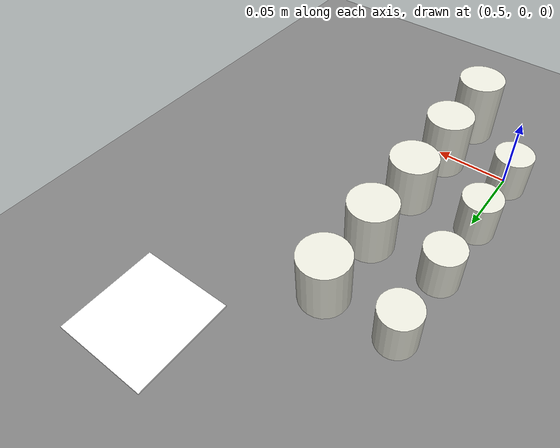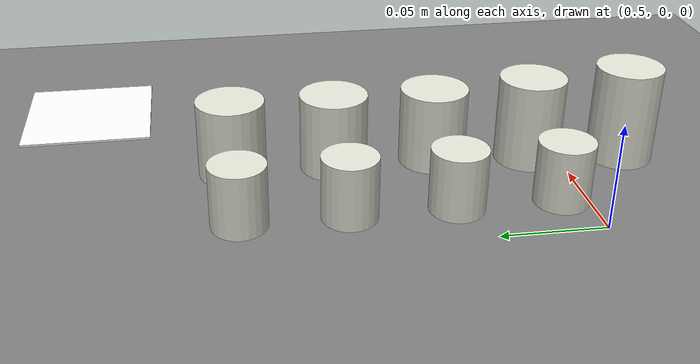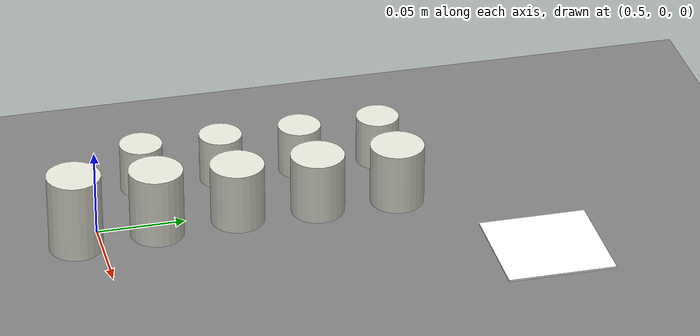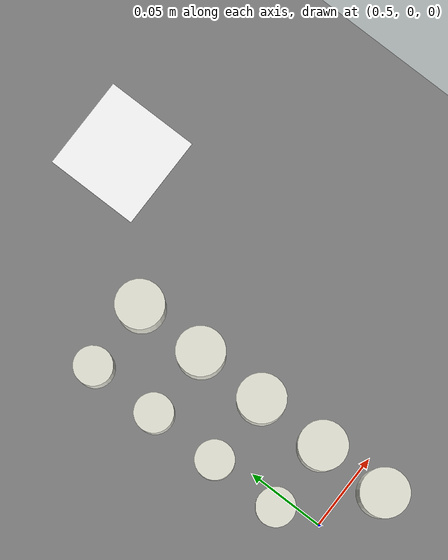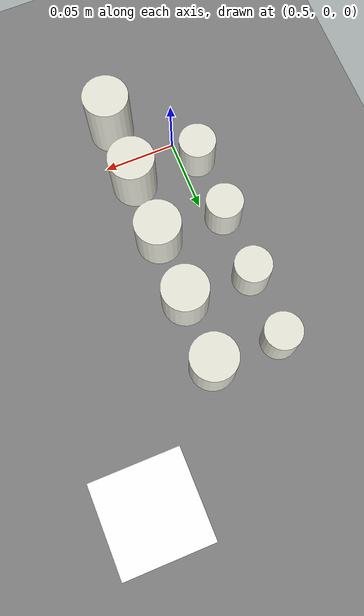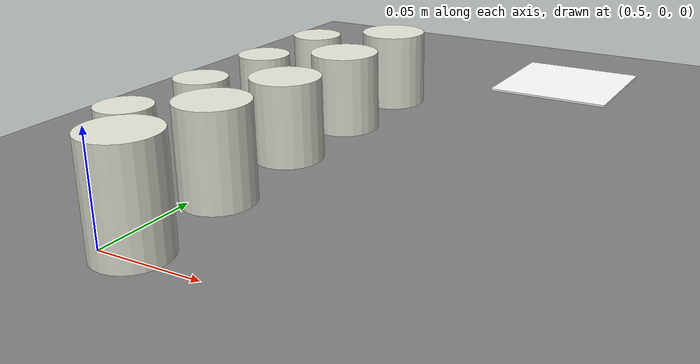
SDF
<sdf version="1.8">
 <world name="arm_world">
  <model name="ground_plane">
   <static>true</static>
   <link name="link">
    <collision name="collision">
     <geometry><plane><normal>0 0 1</normal><size>20 20</size></plane></geometry>
    </collision>
    <visual name="visual">
     <geometry><plane><normal>0 0 1</normal><size>20 20</size></plane></geometry>
     <material><ambient>0.3 0.3 0.3 1</ambient><diffuse>0.5 0.5 0.5 1</diffuse></material>
    </visual>
   </link>
  </model>
  <model name="wp_ra1">
   <pose>0.5375  0.1625 0.038 0 0 0</pose>
   <link name="l">
    <inertial>
     <mass>0.02</mass>
     <inertia>
      <ixx>0.000001</ixx>
      <iyy>0.000001</iyy>
      <izz>0.000001</izz>
      <ixy>0</ixy>
      <ixz>0</ixz>
      <iyz>0</iyz>
     </inertia>
    </inertial>
    <collision name="c">
     <geometry><cylinder><radius>0.015</radius><length>0.035</length></cylinder></geometry>
    </collision>
    <visual name="v">
     <geometry><cylinder><radius>0.015</radius><length>0.035</length></cylinder></geometry>
     <material><ambient>0.9 0.9 0.85 1</ambient><diffuse>0.9 0.9 0.85 1</diffuse></material>
    </visual>
   </link>
  </model>
  <model name="wp_nb1">
   <pose>0.5375  0.1175 0.038 0 0 0</pose>
   <link name="l">
    <inertial>
     <mass>0.02</mass>
     <inertia>
      <ixx>0.000001</ixx>
      <iyy>0.000001</iyy>
      <izz>0.000001</izz>
      <ixy>0</ixy>
      <ixz>0</ixz>
      <iyz>0</iyz>
     </inertia>
    </inertial>
    <collision name="c">
     <geometry><cylinder><radius>0.015</radius><length>0.035</length></cylinder></geometry>
    </collision>
    <visual name="v">
     <geometry><cylinder><radius>0.015</radius><length>0.035</length></cylinder></geometry>
     <material><ambient>0.9 0.9 0.85 1</ambient><diffuse>0.9 0.9 0.85 1</diffuse></material>
    </visual>
   </link>
  </model>
  <model name="wp_bc1">
   <pose>0.5375  0.0725 0.038 0 0 0</pose>
   <link name="l">
    <inertial>
     <mass>0.02</mass>
     <inertia>
      <ixx>0.000001</ixx>
      <iyy>0.000001</iyy>
      <izz>0.000001</izz>
      <ixy>0</ixy>
      <ixz>0</ixz>
      <iyz>0</iyz>
     </inertia>
    </inertial>
    <collision name="c">
     <geometry><cylinder><radius>0.015</radius><length>0.035</length></cylinder></geometry>
    </collision>
    <visual name="v">
     <geometry><cylinder><radius>0.015</radius><length>0.035</length></cylinder></geometry>
     <material><ambient>0.9 0.9 0.85 1</ambient><diffuse>0.9 0.9 0.85 1</diffuse></material>
    </visual>
   </link>
  </model>
  <model name="wp_qd1">
   <pose>0.5375  0.0275 0.038 0 0 0</pose>
   <link name="l">
    <inertial>
     <mass>0.02</mass>
     <inertia>
      <ixx>0.000001</ixx>
      <iyy>0.000001</iyy>
      <izz>0.000001</izz>
      <ixy>0</ixy>
      <ixz>0</ixz>
      <iyz>0</iyz>
     </inertia>
    </inertial>
    <collision name="c">
     <geometry><cylinder><radius>0.015</radius><length>0.040</length></cylinder></geometry>
    </collision>
    <visual name="v">
     <geometry><cylinder><radius>0.015</radius><length>0.040</length></cylinder></geometry>
     <material><ambient>0.9 0.9 0.85 1</ambient><diffuse>0.9 0.9 0.85 1</diffuse></material>
    </visual>
   </link>
  </model>
  <model name="wp_ke1">
   <pose>0.5375 -0.0175 0.038 0 0 0</pose>
   <link name="l">
    <inertial>
     <mass>0.02</mass>
     <inertia>
      <ixx>0.000001</ixx>
      <iyy>0.000001</iyy>
      <izz>0.000001</izz>
      <ixy>0</ixy>
      <ixz>0</ixz>
      <iyz>0</iyz>
     </inertia>
    </inertial>
    <collision name="c">
     <geometry><cylinder><radius>0.015</radius><length>0.045</length></cylinder></geometry>
    </collision>
    <visual name="v">
     <geometry><cylinder><radius>0.015</radius><length>0.045</length></cylinder></geometry>
     <material><ambient>0.9 0.9 0.85 1</ambient><diffuse>0.9 0.9 0.85 1</diffuse></material>
    </visual>
   </link>
  </model>
  <model name="wp_pa2">
   <pose>0.4925  0.1625 0.035 0 0 0</pose>
   <link name="l">
    <inertial>
     <mass>0.015</mass>
     <inertia>
      <ixx>0.000001</ixx>
      <iyy>0.000001</iyy>
      <izz>0.000001</izz>
      <ixy>0</ixy>
      <ixz>0</ixz>
      <iyz>0</iyz>
     </inertia>
    </inertial>
    <collision name="c">
     <geometry><cylinder><radius>0.012</radius><length>0.028</length></cylinder></geometry>
    </collision>
    <visual name="v">
     <geometry><cylinder><radius>0.012</radius><length>0.028</length></cylinder></geometry>
     <material><ambient>0.9 0.9 0.85 1</ambient><diffuse>0.9 0.9 0.85 1</diffuse></material>
    </visual>
   </link>
  </model>
  <model name="wp_pb2">
   <pose>0.4925  0.1175 0.035 0 0 0</pose>
   <link name="l">
    <inertial>
     <mass>0.015</mass>
     <inertia>
      <ixx>0.000001</ixx>
      <iyy>0.000001</iyy>
      <izz>0.000001</izz>
      <ixy>0</ixy>
      <ixz>0</ixz>
      <iyz>0</iyz>
     </inertia>
    </inertial>
    <collision name="c">
     <geometry><cylinder><radius>0.012</radius><length>0.028</length></cylinder></geometry>
    </collision>
    <visual name="v">
     <geometry><cylinder><radius>0.012</radius><length>0.028</length></cylinder></geometry>
     <material><ambient>0.9 0.9 0.85 1</ambient><diffuse>0.9 0.9 0.85 1</diffuse></material>
    </visual>
   </link>
  </model>
  <model name="wp_pc2">
   <pose>0.4925  0.0725 0.035 0 0 0</pose>
   <link name="l">
    <inertial>
     <mass>0.015</mass>
     <inertia>
      <ixx>0.000001</ixx>
      <iyy>0.000001</iyy>
      <izz>0.000001</izz>
      <ixy>0</ixy>
      <ixz>0</ixz>
      <iyz>0</iyz>
     </inertia>
    </inertial>
    <collision name="c">
     <geometry><cylinder><radius>0.012</radius><length>0.028</length></cylinder></geometry>
    </collision>
    <visual name="v">
     <geometry><cylinder><radius>0.012</radius><length>0.028</length></cylinder></geometry>
     <material><ambient>0.9 0.9 0.85 1</ambient><diffuse>0.9 0.9 0.85 1</diffuse></material>
    </visual>
   </link>
  </model>
  <model name="wp_pd2">
   <pose>0.4925  0.0275 0.035 0 0 0</pose>
   <link name="l">
    <inertial>
     <mass>0.015</mass>
     <inertia>
      <ixx>0.000001</ixx>
      <iyy>0.000001</iyy>
      <izz>0.000001</izz>
      <ixy>0</ixy>
      <ixz>0</ixz>
      <iyz>0</iyz>
     </inertia>
    </inertial>
    <collision name="c">
     <geometry><cylinder><radius>0.012</radius><length>0.028</length></cylinder></geometry>
    </collision>
    <visual name="v">
     <geometry><cylinder><radius>0.012</radius><length>0.028</length></cylinder></geometry>
     <material><ambient>0.9 0.9 0.85 1</ambient><diffuse>0.9 0.9 0.85 1</diffuse></material>
    </visual>
   </link>
  </model>
  <model name="aruco_3">
   <static>true</static>
   <pose>0.6045 0.2295 0.0215 0 0 0</pose>
   <link name="link">
    <visual name="visual">
     <geometry><box><size>0.060 0.060 0.001</size></box></geometry>
     <material>
      <diffuse>1 1 1 1</diffuse>
      <pbr>
       <metal>
        <albedo_map>file:///home/mario/Desktop/Arm/robot_arm_chess/materials/textures/aruco_3.png</albedo_map>
       </metal>
      </pbr>
     </material>
    </visual>
   </link>
  </model>
 </world>
</sdf>
